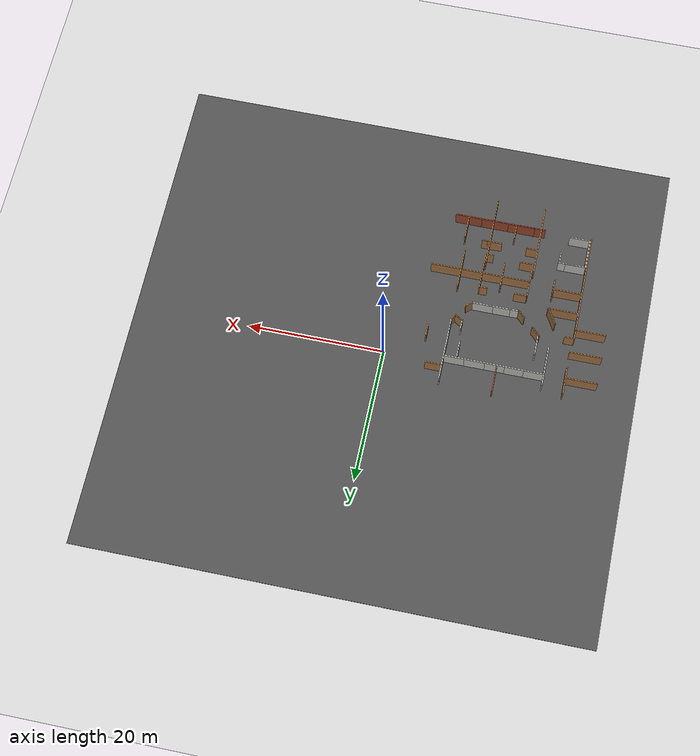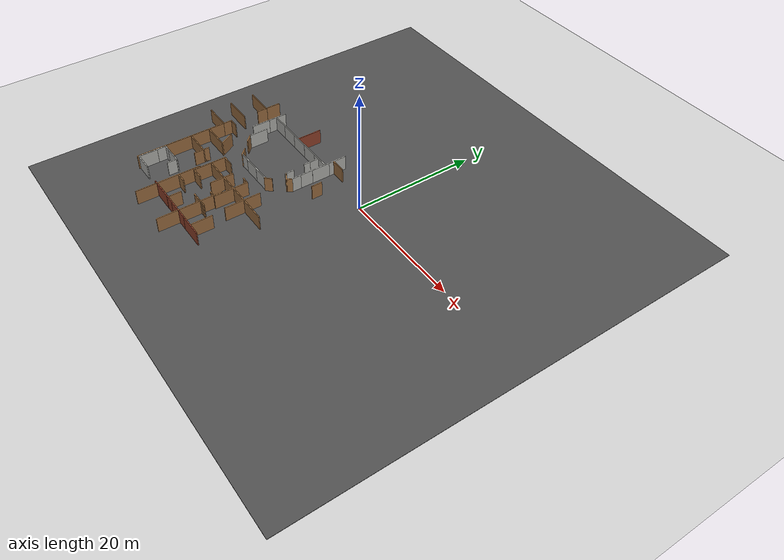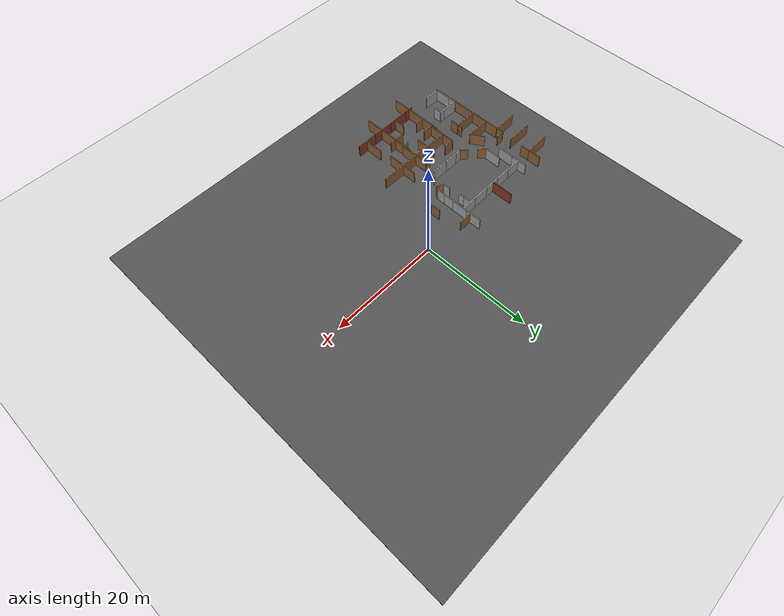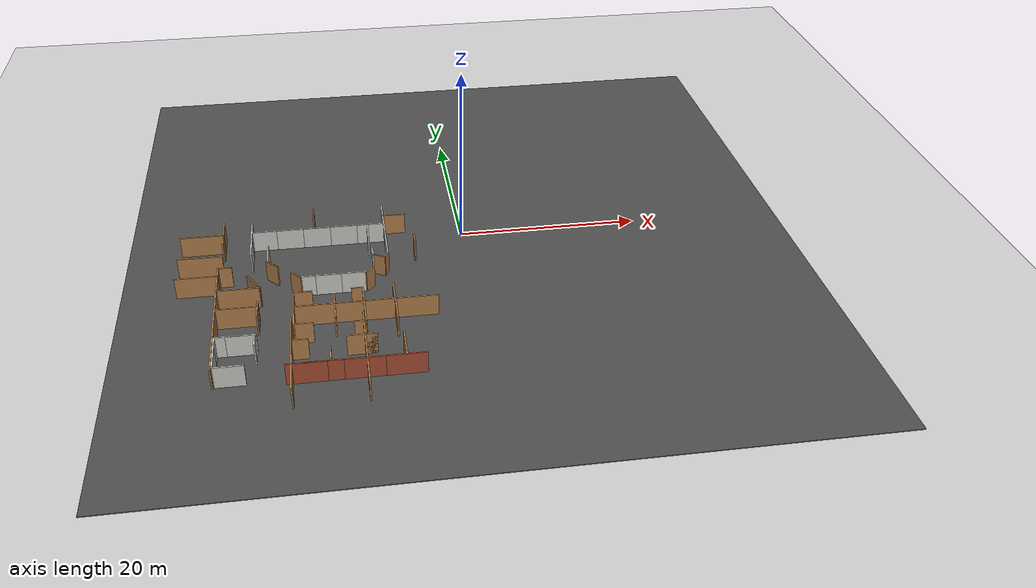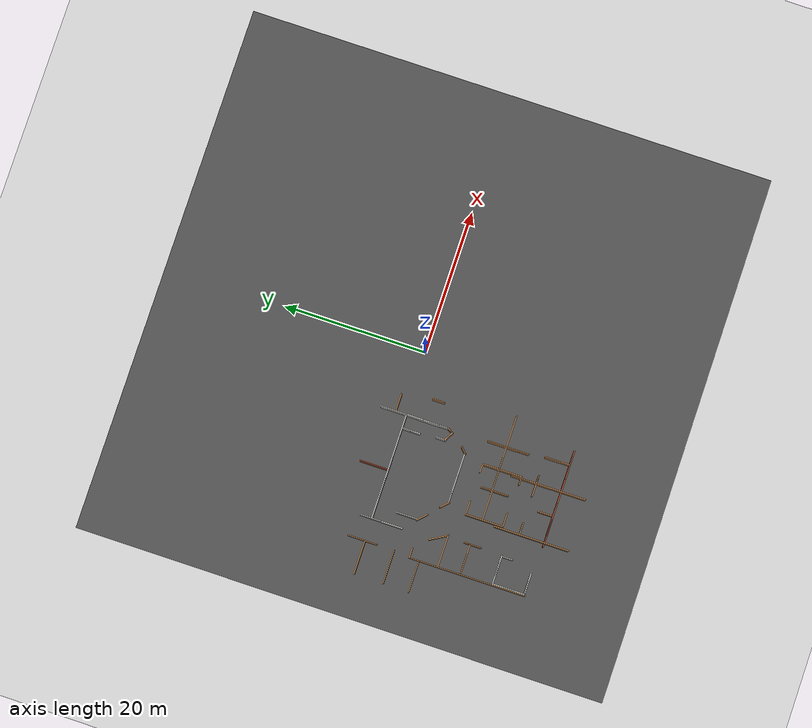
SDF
<sdf version="1.6">
 <world name="default">
  <model name="ground_plane">
   <static>1</static>
   <link name="link">
    <collision name="collision">
     <geometry><plane><normal>0 0 1</normal><size>100 100</size></plane></geometry>
     <surface><friction><ode><mu>100</mu><mu2>50</mu2></ode></friction></surface>
    </collision>
    <visual name="visual">
     <cast_shadows>0</cast_shadows>
     <geometry><plane><normal>0 0 1</normal><size>100 100</size></plane></geometry>
     <material>
      <script><uri>file://media/materials/scripts/gazebo.material</uri><name>Gazebo/Grey</name></script>
     </material>
    </visual>
   </link>
  </model>
  <model name="asphalt_plane">
   <static>1</static>
   <link name="link">
    <collision name="collision"><geometry><box><size>74 74 0.1</size></box></geometry></collision>
    <visual name="visual">
     <cast_shadows>0</cast_shadows>
     <geometry><box><size>74 74 0.1</size></box></geometry>
     <material>
      <script>
       <uri>model://asphalt_plane/materials/scripts</uri>
       <uri>model://asphalt_plane/materials/textures</uri>
       <name>vrc/asphalt</name>
      </script>
     </material>
    </visual>
   </link>
  </model>
  <model name="concrete_wall_3">
   <pose>-26.6192 -21.1644 0 0 -0 0</pose>
   <link name="Wall_0">
    <collision name="Wall_0_Collision">
     <geometry><box><size>3 0.15 2.5</size></box></geometry>
     <pose>0 0 1.25 0 -0 0</pose>
    </collision>
    <visual name="Wall_0_Visual">
     <pose>0 0 1.25 0 -0 0</pose>
     <geometry><box><size>3 0.15 2.5</size></box></geometry>
     <material>
      <script><uri>file://media/materials/scripts/gazebo.material</uri><name>Gazebo/CeilingTiled</name></script>
      <ambient>1 1 1 1</ambient>
     </material>
     <meta><layer>0</layer></meta>
    </visual>
    <pose>0 0 0 0 -0 1.5708</pose>
   </link>
   <static>1</static>
  </model>
  <model name="concrete_wall_4">
   <pose>-26.6244 -19.6415 0 0 -0 0</pose>
   <link name="Wall_0">
    <collision name="Wall_0_Collision">
     <geometry><box><size>3 0.15 2.5</size></box></geometry>
     <pose>0 0 1.25 0 -0 0</pose>
    </collision>
    <visual name="Wall_0_Visual">
     <pose>0 0 1.25 0 -0 0</pose>
     <geometry><box><size>3 0.15 2.5</size></box></geometry>
     <material>
      <script><uri>file://media/materials/scripts/gazebo.material</uri><name>Gazebo/CeilingTiled</name></script>
      <ambient>1 1 1 1</ambient>
     </material>
     <meta><layer>0</layer></meta>
    </visual>
    <pose>0 0 0 0 -0 1.5708</pose>
   </link>
   <static>1</static>
  </model>
  <model name="concrete_wall_6_clone">
   <pose>-25.1114 -22.6438 0 0 -0 1.57079</pose>
   <link name="Wall_0">
    <collision name="Wall_0_Collision">
     <geometry><box><size>3 0.15 2.5</size></box></geometry>
     <pose>0 0 1.25 0 -0 0</pose>
    </collision>
    <visual name="Wall_0_Visual">
     <pose>0 0 1.25 0 -0 0</pose>
     <geometry><box><size>3 0.15 2.5</size></box></geometry>
     <material>
      <script><uri>file://media/materials/scripts/gazebo.material</uri><name>Gazebo/CeilingTiled</name></script>
      <ambient>1 1 1 1</ambient>
     </material>
     <meta><layer>0</layer></meta>
    </visual>
    <pose>0 0 0 0 -0 1.5708</pose>
   </link>
   <static>1</static>
  </model>
  <model name="concrete_wall_6_clone_0">
   <pose>-25.1351 -18.2014 0 0 -0 1.57079</pose>
   <link name="Wall_0">
    <collision name="Wall_0_Collision">
     <geometry><box><size>3 0.15 2.5</size></box></geometry>
     <pose>0 0 1.25 0 -0 0</pose>
    </collision>
    <visual name="Wall_0_Visual">
     <pose>0 0 1.25 0 -0 0</pose>
     <geometry><box><size>3 0.15 2.5</size></box></geometry>
     <material>
      <script><uri>file://media/materials/scripts/gazebo.material</uri><name>Gazebo/CeilingTiled</name></script>
      <ambient>1 1 1 1</ambient>
     </material>
     <meta><layer>0</layer></meta>
    </visual>
    <pose>0 0 0 0 -0 1.5708</pose>
   </link>
   <static>1</static>
  </model>
  <model name="willowgarage_v1_1">
   <pose>-14.3408 -3.86286 0 0 -0 0</pose>
   <link name="Wall_152">
    <collision name="Wall_152_Collision">
     <geometry><box><size>2.5 0.15 2.5</size></box></geometry>
     <pose>0 0 1.25 0 -0 0</pose>
    </collision>
    <visual name="Wall_152_Visual">
     <pose>0 0 1.25 0 -0 0</pose>
     <geometry><box><size>2.5 0.15 2.5</size></box></geometry>
     <material>
      <script><uri>file://media/materials/scripts/gazebo.material</uri><name>Gazebo/Wood</name></script>
      <ambient>1 1 1 1</ambient>
     </material>
     <meta><layer>0</layer></meta>
    </visual>
    <pose>-12.1839 4.7175 0 0 0 -1.5708</pose>
   </link>
   <link name="Wall_153">
    <collision name="Wall_153_Collision">
     <geometry><box><size>4.75 0.15 2.5</size></box></geometry>
     <pose>0 0 1.25 0 -0 0</pose>
    </collision>
    <visual name="Wall_153_Visual">
     <pose>0 0 1.25 0 -0 0</pose>
     <geometry><box><size>4.75 0.15 2.5</size></box></geometry>
     <material>
      <script><uri>file://media/materials/scripts/gazebo.material</uri><name>Gazebo/Wood</name></script>
      <ambient>1 1 1 1</ambient>
     </material>
     <meta><layer>0</layer></meta>
    </visual>
    <pose>-14.4839 3.5425 0 0 -0 3.14159</pose>
   </link>
   <link name="Wall_155">
    <collision name="Wall_155_Collision">
     <geometry><box><size>1.75 0.15 2.5</size></box></geometry>
     <pose>0 0 1.25 0 -0 0</pose>
    </collision>
    <visual name="Wall_155_Visual">
     <pose>0 0 1.25 0 -0 0</pose>
     <geometry><box><size>1.75 0.15 2.5</size></box></geometry>
     <material>
      <script><uri>file://media/materials/scripts/gazebo.material</uri><name>Gazebo/Wood</name></script>
      <ambient>1 1 1 1</ambient>
     </material>
     <meta><layer>0</layer></meta>
    </visual>
    <pose>-12.1839 2.7425 0 0 0 -1.5708</pose>
   </link>
   <link name="Wall_157">
    <collision name="Wall_157_Collision">
     <geometry><box><size>4.75 0.15 2.5</size></box></geometry>
     <pose>0 0 1.25 0 -0 0</pose>
    </collision>
    <visual name="Wall_157_Visual">
     <pose>0 0 1.25 0 -0 0</pose>
     <geometry><box><size>4.75 0.15 2.5</size></box></geometry>
     <material>
      <script><uri>file://media/materials/scripts/gazebo.material</uri><name>Gazebo/Wood</name></script>
      <ambient>1 1 1 1</ambient>
     </material>
     <meta><layer>0</layer></meta>
    </visual>
    <pose>-14.4851 -0.527798 0 0 -0 0</pose>
   </link>
   <link name="Wall_159">
    <collision name="Wall_159_Collision">
     <geometry><box><size>1.5 0.15 2.5</size></box></geometry>
     <pose>0 0 1.25 0 -0 0</pose>
    </collision>
    <visual name="Wall_159_Visual">
     <pose>0 0 1.25 0 -0 0</pose>
     <geometry><box><size>1.5 0.15 2.5</size></box></geometry>
     <material>
      <script><uri>file://media/materials/scripts/gazebo.material</uri><name>Gazebo/Wood</name></script>
      <ambient>1 1 1 1</ambient>
     </material>
     <meta><layer>0</layer></meta>
    </visual>
    <pose>-12.4568 -3.428 0 0 -0 1.5708</pose>
   </link>
   <link name="Wall_161">
    <collision name="Wall_161_Collision">
     <geometry><box><size>1.5 0.15 2.5</size></box></geometry>
     <pose>0 0 1.25 0 -0 0</pose>
    </collision>
    <visual name="Wall_161_Visual">
     <pose>0 0 1.25 0 -0 0</pose>
     <geometry><box><size>1.5 0.15 2.5</size></box></geometry>
     <material>
      <script><uri>file://media/materials/scripts/gazebo.material</uri><name>Gazebo/Wood</name></script>
      <ambient>1 1 1 1</ambient>
     </material>
     <meta><layer>0</layer></meta>
    </visual>
    <pose>-11.7818 -2.753 0 0 -0 0</pose>
   </link>
   <link name="Wall_164">
    <collision name="Wall_164_Collision">
     <geometry><box><size>4.5 0.15 2.5</size></box></geometry>
     <pose>0 0 1.25 0 -0 0</pose>
    </collision>
    <visual name="Wall_164_Visual">
     <pose>0 0 1.25 0 -0 0</pose>
     <geometry><box><size>4.5 0.15 2.5</size></box></geometry>
     <material>
      <script><uri>file://media/materials/scripts/gazebo.material</uri><name>Gazebo/Wood</name></script>
      <ambient>1 1 1 1</ambient>
     </material>
     <meta><layer>0</layer></meta>
    </visual>
    <pose>-10.2229 -6.73409 0 0 -0 0</pose>
   </link>
   <link name="Wall_165">
    <collision name="Wall_165_Collision">
     <geometry><box><size>2.75 0.15 2.5</size></box></geometry>
     <pose>0 0 1.25 0 -0 0</pose>
    </collision>
    <visual name="Wall_165_Visual">
     <pose>0 0 1.25 0 -0 0</pose>
     <geometry><box><size>2.75 0.15 2.5</size></box></geometry>
     <material>
      <script><uri>file://media/materials/scripts/gazebo.material</uri><name>Gazebo/Wood</name></script>
      <ambient>1 1 1 1</ambient>
     </material>
     <meta><layer>0</layer></meta>
    </visual>
    <pose>-8.69791 -5.60825 0 0 -0 2.0944</pose>
   </link>
   <link name="Wall_167">
    <collision name="Wall_167_Collision">
     <geometry><box><size>4.25 0.15 2.5</size></box></geometry>
     <pose>0 0 1.25 0 -0 0</pose>
    </collision>
    <visual name="Wall_167_Visual">
     <pose>0 0 1.25 0 -0 0</pose>
     <geometry><box><size>4.25 0.15 2.5</size></box></geometry>
     <material>
      <script><uri>file://media/materials/scripts/gazebo.material</uri><name>Gazebo/Wood</name></script>
      <ambient>1 1 1 1</ambient>
     </material>
     <meta><layer>0</layer></meta>
    </visual>
    <pose>-10.2944 -9.89074 0 0 -0 0</pose>
   </link>
   <link name="Wall_168">
    <collision name="Wall_168_Collision">
     <geometry><box><size>1 0.15 2.5</size></box></geometry>
     <pose>0 0 1.25 0 -0 0</pose>
    </collision>
    <visual name="Wall_168_Visual">
     <pose>0 0 1.25 0 -0 0</pose>
     <geometry><box><size>1 0.15 2.5</size></box></geometry>
     <material>
      <script><uri>file://media/materials/scripts/gazebo.material</uri><name>Gazebo/Wood</name></script>
      <ambient>1 1 1 1</ambient>
     </material>
     <meta><layer>0</layer></meta>
    </visual>
    <pose>-8.24441 -9.46574 0 0 -0 1.5708</pose>
   </link>
   <link name="Wall_169">
    <collision name="Wall_169_Collision">
     <geometry><box><size>2.5 0.15 2.5</size></box></geometry>
     <pose>0 0 1.25 0 -0 0</pose>
    </collision>
    <visual name="Wall_169_Visual">
     <pose>0 0 1.25 0 -0 0</pose>
     <geometry><box><size>2.5 0.15 2.5</size></box></geometry>
     <material>
      <script><uri>file://media/materials/scripts/gazebo.material</uri><name>Gazebo/Wood</name></script>
      <ambient>1 1 1 1</ambient>
     </material>
     <meta><layer>0</layer></meta>
    </visual>
    <pose>-8.24441 -10.2157 0 0 0 -1.5708</pose>
   </link>
   <link name="Wall_240">
    <collision name="Wall_240_Collision">
     <geometry><box><size>14.75 0.15 2.5</size></box></geometry>
     <pose>0 0 1.25 0 -0 0</pose>
    </collision>
    <visual name="Wall_240_Visual">
     <pose>0 0 1.25 0 -0 0</pose>
     <geometry><box><size>14.75 0.15 2.5</size></box></geometry>
     <material>
      <script><uri>file://media/materials/scripts/gazebo.material</uri><name>Gazebo/Wood</name></script>
      <ambient>1 1 1 1</ambient>
     </material>
     <meta><layer>0</layer></meta>
    </visual>
    <pose>2.64575 -10.4128 0 0 -0 3.14159</pose>
   </link>
   <link name="Wall_241">
    <collision name="Wall_241_Collision">
     <geometry><box><size>3 0.15 2.5</size></box></geometry>
     <pose>0 0 1.25 0 -0 0</pose>
    </collision>
    <visual name="Wall_241_Visual">
     <pose>0 0 1.25 0 -0 0</pose>
     <geometry><box><size>3 0.15 2.5</size></box></geometry>
     <material>
      <script><uri>file://media/materials/scripts/gazebo.material</uri><name>Gazebo/Wood</name></script>
      <ambient>1 1 1 1</ambient>
     </material>
     <meta><layer>0</layer></meta>
    </visual>
    <pose>-4.65424 -11.8378 0 0 0 -1.5708</pose>
   </link>
   <link name="Wall_242">
    <collision name="Wall_242_Collision">
     <geometry><box><size>2 0.15 2.5</size></box></geometry>
     <pose>0 0 1.25 0 -0 0</pose>
    </collision>
    <visual name="Wall_242_Visual">
     <pose>0 0 1.25 0 -0 0</pose>
     <geometry><box><size>2 0.15 2.5</size></box></geometry>
     <material>
      <script><uri>file://media/materials/scripts/gazebo.material</uri><name>Gazebo/Wood</name></script>
      <ambient>1 1 1 1</ambient>
     </material>
     <meta><layer>0</layer></meta>
    </visual>
    <pose>-3.72924 -13.2628 0 0 -0 0</pose>
   </link>
   <link name="Wall_244">
    <collision name="Wall_244_Collision">
     <geometry><box><size>2.25 0.15 2.5</size></box></geometry>
     <pose>0 0 1.25 0 -0 0</pose>
    </collision>
    <visual name="Wall_244_Visual">
     <pose>0 0 1.25 0 -0 0</pose>
     <geometry><box><size>2.25 0.15 2.5</size></box></geometry>
     <material>
      <script><uri>file://media/materials/scripts/gazebo.material</uri><name>Gazebo/Wood</name></script>
      <ambient>1 1 1 1</ambient>
     </material>
     <meta><layer>0</layer></meta>
    </visual>
    <pose>-0.53809 -11.5666 0 0 0 -1.5708</pose>
   </link>
   <link name="Wall_252">
    <collision name="Wall_252_Collision">
     <geometry><box><size>3.25 0.15 2.5</size></box></geometry>
     <pose>0 0 1.25 0 -0 0</pose>
    </collision>
    <visual name="Wall_252_Visual">
     <pose>0 0 1.25 0 -0 0</pose>
     <geometry><box><size>3.25 0.15 2.5</size></box></geometry>
     <material>
      <script><uri>file://media/materials/scripts/gazebo.material</uri><name>Gazebo/Wood</name></script>
      <ambient>1 1 1 1</ambient>
     </material>
     <meta><layer>0</layer></meta>
    </visual>
    <pose>5.59669 -11.9573 0 0 0 -1.5708</pose>
   </link>
   <link name="Wall_254">
    <collision name="Wall_254_Collision">
     <geometry><box><size>3.25 0.15 2.5</size></box></geometry>
     <pose>0 0 1.25 0 -0 0</pose>
    </collision>
    <visual name="Wall_254_Visual">
     <pose>0 0 1.25 0 -0 0</pose>
     <geometry><box><size>3.25 0.15 2.5</size></box></geometry>
     <material>
      <script><uri>file://media/materials/scripts/gazebo.material</uri><name>Gazebo/Wood</name></script>
      <ambient>1 1 1 1</ambient>
     </material>
     <meta><layer>0</layer></meta>
    </visual>
    <pose>2.44005 -12.0108 0 0 0 -1.5708</pose>
   </link>
   <link name="Wall_255">
    <collision name="Wall_255_Collision">
     <geometry><box><size>1.25 0.15 2.5</size></box></geometry>
     <pose>0 0 1.25 0 -0 0</pose>
    </collision>
    <visual name="Wall_255_Visual">
     <pose>0 0 1.25 0 -0 0</pose>
     <geometry><box><size>1.25 0.15 2.5</size></box></geometry>
     <material>
      <script><uri>file://media/materials/scripts/gazebo.material</uri><name>Gazebo/Wood</name></script>
      <ambient>1 1 1 1</ambient>
     </material>
     <meta><layer>0</layer></meta>
    </visual>
    <pose>1.89004 -13.5608 0 0 -0 3.14159</pose>
   </link>
   <link name="Wall_257">
    <collision name="Wall_257_Collision">
     <geometry><box><size>2.75 0.15 2.5</size></box></geometry>
     <pose>0 0 1.25 0 -0 0</pose>
    </collision>
    <visual name="Wall_257_Visual">
     <pose>0 0 1.25 0 -0 0</pose>
     <geometry><box><size>2.75 0.15 2.5</size></box></geometry>
     <material>
      <script><uri>file://media/materials/scripts/gazebo.material</uri><name>Gazebo/Wood</name></script>
      <ambient>1 1 1 1</ambient>
     </material>
     <meta><layer>0</layer></meta>
    </visual>
    <pose>5.59669 -9.10726 0 0 -0 1.5708</pose>
   </link>
   <link name="Wall_259">
    <collision name="Wall_259_Collision">
     <geometry><box><size>2.5 0.15 2.5</size></box></geometry>
     <pose>0 0 1.25 0 -0 0</pose>
    </collision>
    <visual name="Wall_259_Visual">
     <pose>0 0 1.25 0 -0 0</pose>
     <geometry><box><size>2.5 0.15 2.5</size></box></geometry>
     <material>
      <script><uri>file://media/materials/scripts/gazebo.material</uri><name>Gazebo/Wood</name></script>
      <ambient>1 1 1 1</ambient>
     </material>
     <meta><layer>0</layer></meta>
    </visual>
    <pose>-4.65424 -9.23778 0 0 -0 1.5708</pose>
   </link>
   <link name="Wall_260">
    <collision name="Wall_260_Collision">
     <geometry><box><size>2 0.15 2.5</size></box></geometry>
     <pose>0 0 1.25 0 -0 0</pose>
    </collision>
    <visual name="Wall_260_Visual">
     <pose>0 0 1.25 0 -0 0</pose>
     <geometry><box><size>2 0.15 2.5</size></box></geometry>
     <material>
      <script><uri>file://media/materials/scripts/gazebo.material</uri><name>Gazebo/Wood</name></script>
      <ambient>1 1 1 1</ambient>
     </material>
     <meta><layer>0</layer></meta>
    </visual>
    <pose>-3.72924 -8.06278 0 0 -0 0</pose>
   </link>
   <link name="Wall_262">
    <collision name="Wall_262_Collision">
     <geometry><box><size>1.75 0.15 2.5</size></box></geometry>
     <pose>0 0 1.25 0 -0 0</pose>
    </collision>
    <visual name="Wall_262_Visual">
     <pose>0 0 1.25 0 -0 0</pose>
     <geometry><box><size>1.75 0.15 2.5</size></box></geometry>
     <material>
      <script><uri>file://media/materials/scripts/gazebo.material</uri><name>Gazebo/Wood</name></script>
      <ambient>1 1 1 1</ambient>
     </material>
     <meta><layer>0</layer></meta>
    </visual>
    <pose>-0.53809 -9.71664 0 0 -0 1.5708</pose>
   </link>
   <link name="Wall_264">
    <collision name="Wall_264_Collision">
     <geometry><box><size>2.5 0.15 2.5</size></box></geometry>
     <pose>0 0 1.25 0 -0 0</pose>
    </collision>
    <visual name="Wall_264_Visual">
     <pose>0 0 1.25 0 -0 0</pose>
     <geometry><box><size>2.5 0.15 2.5</size></box></geometry>
     <material>
      <script><uri>file://media/materials/scripts/gazebo.material</uri><name>Gazebo/Wood</name></script>
      <ambient>1 1 1 1</ambient>
     </material>
     <meta><layer>0</layer></meta>
    </visual>
    <pose>2.44005 -9.28576 0 0 -0 1.5708</pose>
   </link>
   <link name="Wall_265">
    <collision name="Wall_265_Collision">
     <geometry><box><size>1.25 0.15 2.5</size></box></geometry>
     <pose>0 0 1.25 0 -0 0</pose>
    </collision>
    <visual name="Wall_265_Visual">
     <pose>0 0 1.25 0 -0 0</pose>
     <geometry><box><size>1.25 0.15 2.5</size></box></geometry>
     <material>
      <script><uri>file://media/materials/scripts/gazebo.material</uri><name>Gazebo/Wood</name></script>
      <ambient>1 1 1 1</ambient>
     </material>
     <meta><layer>0</layer></meta>
    </visual>
    <pose>1.89004 -8.11076 0 0 -0 3.14159</pose>
   </link>
   <link name="Wall_284">
    <collision name="Wall_284_Collision">
     <geometry><box><size>1 0.15 2.5</size></box></geometry>
     <pose>0 0 1.25 0 -0 0</pose>
    </collision>
    <visual name="Wall_284_Visual">
     <pose>0 0 1.25 0 -0 0</pose>
     <geometry><box><size>1 0.15 2.5</size></box></geometry>
     <material>
      <script><uri>file://media/materials/scripts/gazebo.material</uri><name>Gazebo/Wood</name></script>
      <ambient>1 1 1 1</ambient>
     </material>
     <meta><layer>0</layer></meta>
    </visual>
    <pose>5.29209 -2.61627 0 0 0 -2.0944</pose>
   </link>
   <link name="Wall_285">
    <collision name="Wall_285_Collision">
     <geometry><box><size>1.5 0.15 2.5</size></box></geometry>
     <pose>0 0 1.25 0 -0 0</pose>
    </collision>
    <visual name="Wall_285_Visual">
     <pose>0 0 1.25 0 -0 0</pose>
     <geometry><box><size>1.5 0.15 2.5</size></box></geometry>
     <material>
      <script><uri>file://media/materials/scripts/gazebo.material</uri><name>Gazebo/Wood</name></script>
      <ambient>1 1 1 1</ambient>
     </material>
     <meta><layer>0</layer></meta>
    </visual>
    <pose>4.49502 -2.64683 0 0 -0 2.61799</pose>
   </link>
   <link name="Wall_299">
    <collision name="Wall_299_Collision">
     <geometry><box><size>1.75 0.15 2.5</size></box></geometry>
     <pose>0 0 1.25 0 -0 0</pose>
    </collision>
    <visual name="Wall_299_Visual">
     <pose>0 0 1.25 0 -0 0</pose>
     <geometry><box><size>1.75 0.15 2.5</size></box></geometry>
     <material>
      <script><uri>file://media/materials/scripts/gazebo.material</uri><name>Gazebo/Wood</name></script>
      <ambient>1 1 1 1</ambient>
     </material>
     <meta><layer>0</layer></meta>
    </visual>
    <pose>-6.83059 -2.67941 0 0 0 -0.785398</pose>
   </link>
   <link name="Wall_302">
    <collision name="Wall_302_Collision">
     <geometry><box><size>1.5 0.15 2.5</size></box></geometry>
     <pose>0 0 1.25 0 -0 0</pose>
    </collision>
    <visual name="Wall_302_Visual">
     <pose>0 0 1.25 0 -0 0</pose>
     <geometry><box><size>1.5 0.15 2.5</size></box></geometry>
     <material>
      <script><uri>file://media/materials/scripts/gazebo.material</uri><name>Gazebo/Wood</name></script>
      <ambient>1 1 1 1</ambient>
     </material>
     <meta><layer>0</layer></meta>
    </visual>
    <pose>-4.32982 -5.00708 0 0 0 -0.785398</pose>
   </link>
   <link name="Wall_304">
    <collision name="Wall_304_Collision">
     <geometry><box><size>1.25 0.15 2.5</size></box></geometry>
     <pose>0 0 1.25 0 -0 0</pose>
    </collision>
    <visual name="Wall_304_Visual">
     <pose>0 0 1.25 0 -0 0</pose>
     <geometry><box><size>1.25 0.15 2.5</size></box></geometry>
     <material>
      <script><uri>file://media/materials/scripts/gazebo.material</uri><name>Gazebo/Wood</name></script>
      <ambient>1 1 1 1</ambient>
     </material>
     <meta><layer>0</layer></meta>
    </visual>
    <pose>3.38639 -5.09547 0 0 -0 0.785398</pose>
   </link>
   <link name="Wall_324">
    <collision name="Wall_324_Collision">
     <geometry><box><size>1.75 0.15 2.5</size></box></geometry>
     <pose>0 0 1.25 0 -0 0</pose>
    </collision>
    <visual name="Wall_324_Visual">
     <pose>0 0 1.25 0 -0 0</pose>
     <geometry><box><size>1.75 0.15 2.5</size></box></geometry>
     <material>
      <script><uri>file://media/materials/scripts/gazebo.material</uri><name>Gazebo/Wood</name></script>
      <ambient>1 1 1 1</ambient>
     </material>
     <meta><layer>0</layer></meta>
    </visual>
    <pose>8.62279 0.119011 0 0 0 -1.5708</pose>
   </link>
   <link name="Wall_326">
    <collision name="Wall_326_Collision">
     <geometry><box><size>2.5 0.15 2.5</size></box></geometry>
     <pose>0 0 1.25 0 -0 0</pose>
    </collision>
    <visual name="Wall_326_Visual">
     <pose>0 0 1.25 0 -0 0</pose>
     <geometry><box><size>2.5 0.15 2.5</size></box></geometry>
     <material>
      <script><uri>file://media/materials/scripts/gazebo.material</uri><name>Gazebo/Wood</name></script>
      <ambient>1 1 1 1</ambient>
     </material>
     <meta><layer>0</layer></meta>
    </visual>
    <pose>6.71011 5.1345 0 0 -0 0</pose>
   </link>
   <link name="Wall_55">
    <collision name="Wall_55_Collision">
     <geometry><box><size>3.5 0.15 2.5</size></box></geometry>
     <pose>0 0 1.25 0 -0 0</pose>
    </collision>
    <visual name="Wall_55_Visual">
     <pose>0 0 1.25 0 -0 0</pose>
     <geometry><box><size>3.5 0.15 2.5</size></box></geometry>
     <material>
      <script><uri>file://media/materials/scripts/gazebo.material</uri><name>Gazebo/Wood</name></script>
      <ambient>1 1 1 1</ambient>
     </material>
     <meta><layer>0</layer></meta>
    </visual>
    <pose>5.96875 -17.4404 0 0 -0 1.5708</pose>
   </link>
   <link name="Wall_57">
    <collision name="Wall_57_Collision">
     <geometry><box><size>10.5 0.15 2.5</size></box></geometry>
     <pose>0 0 1.25 0 -0 0</pose>
    </collision>
    <visual name="Wall_57_Visual">
     <pose>0 0 1.25 0 -0 0</pose>
     <geometry><box><size>10.5 0.15 2.5</size></box></geometry>
     <material>
      <script><uri>file://media/materials/scripts/gazebo.material</uri><name>Gazebo/Wood</name></script>
      <ambient>1 1 1 1</ambient>
     </material>
     <meta><layer>0</layer></meta>
    </visual>
    <pose>2.21555 -17.3789 0 0 -0 1.5708</pose>
   </link>
   <link name="Wall_58">
    <collision name="Wall_58_Collision">
     <geometry><box><size>1.25 0.15 2.5</size></box></geometry>
     <pose>0 0 1.25 0 -0 0</pose>
    </collision>
    <visual name="Wall_58_Visual">
     <pose>0 0 1.25 0 -0 0</pose>
     <geometry><box><size>1.25 0.15 2.5</size></box></geometry>
     <material>
      <script><uri>file://media/materials/scripts/gazebo.material</uri><name>Gazebo/Wood</name></script>
      <ambient>1 1 1 1</ambient>
     </material>
     <meta><layer>0</layer></meta>
    </visual>
    <pose>2.76555 -15.7039 0 0 -0 0</pose>
   </link>
   <link name="Wall_59">
    <collision name="Wall_59_Collision">
     <geometry><box><size>3 0.15 2.5</size></box></geometry>
     <pose>0 0 1.25 0 -0 0</pose>
    </collision>
    <visual name="Wall_59_Visual">
     <pose>0 0 1.25 0 -0 0</pose>
     <geometry><box><size>3 0.15 2.5</size></box></geometry>
     <material>
      <script><uri>file://media/materials/scripts/gazebo.material</uri><name>Gazebo/Wood</name></script>
      <ambient>1 1 1 1</ambient>
     </material>
     <meta><layer>0</layer></meta>
    </visual>
    <pose>1.89055 -15.7039 0 0 -0 3.14159</pose>
   </link>
   <link name="Wall_61">
    <collision name="Wall_61_Collision">
     <geometry><box><size>10.5 0.15 2.5</size></box></geometry>
     <pose>0 0 1.25 0 -0 0</pose>
    </collision>
    <visual name="Wall_61_Visual">
     <pose>0 0 1.25 0 -0 0</pose>
     <geometry><box><size>10.5 0.15 2.5</size></box></geometry>
     <material>
      <script><uri>file://media/materials/scripts/gazebo.material</uri><name>Gazebo/Wood</name></script>
      <ambient>1 1 1 1</ambient>
     </material>
     <meta><layer>0</layer></meta>
    </visual>
    <pose>-4.95338 -17.3764 0 0 -0 1.5708</pose>
   </link>
   <link name="Wall_62">
    <collision name="Wall_62_Collision">
     <geometry><box><size>1.75 0.15 2.5</size></box></geometry>
     <pose>0 0 1.25 0 -0 0</pose>
    </collision>
    <visual name="Wall_62_Visual">
     <pose>0 0 1.25 0 -0 0</pose>
     <geometry><box><size>1.75 0.15 2.5</size></box></geometry>
     <material>
      <script><uri>file://media/materials/scripts/gazebo.material</uri><name>Gazebo/Wood</name></script>
      <ambient>1 1 1 1</ambient>
     </material>
     <meta><layer>0</layer></meta>
    </visual>
    <pose>-4.15338 -15.7014 0 0 -0 0</pose>
   </link>
   <link name="Wall_64">
    <collision name="Wall_64_Collision">
     <geometry><box><size>2 0.15 2.5</size></box></geometry>
     <pose>0 0 1.25 0 -0 0</pose>
    </collision>
    <visual name="Wall_64_Visual">
     <pose>0 0 1.25 0 -0 0</pose>
     <geometry><box><size>2 0.15 2.5</size></box></geometry>
     <material>
      <script><uri>file://media/materials/scripts/gazebo.material</uri><name>Gazebo/Wood</name></script>
      <ambient>1 1 1 1</ambient>
     </material>
     <meta><layer>0</layer></meta>
    </visual>
    <pose>-1.23001 -18.0674 0 0 -0 1.5708</pose>
   </link>
   <link name="Wall_8">
    <collision name="Wall_8_Collision">
     <geometry><box><size>15 0.15 2.5</size></box></geometry>
     <pose>0 0 1.25 0 -0 0</pose>
    </collision>
    <visual name="Wall_8_Visual">
     <pose>0 0 1.25 0 -0 0</pose>
     <geometry><box><size>15 0.15 2.5</size></box></geometry>
     <material>
      <script><uri>file://media/materials/scripts/gazebo.material</uri><name>Gazebo/Wood</name></script>
      <ambient>1 1 1 1</ambient>
     </material>
     <meta><layer>0</layer></meta>
    </visual>
    <pose>-12.4568 -11.528 0 0 -0 1.5708</pose>
   </link>
   <link name="Wall_9">
    <collision name="Wall_9_Collision">
     <geometry><box><size>4.5 0.15 2.5</size></box></geometry>
     <pose>0 0 1.25 0 -0 0</pose>
    </collision>
    <visual name="Wall_9_Visual">
     <pose>0 0 1.25 0 -0 0</pose>
     <geometry><box><size>4.5 0.15 2.5</size></box></geometry>
     <material>
      <script><uri>file://media/materials/scripts/gazebo.material</uri><name>Gazebo/Wood</name></script>
      <ambient>1 1 1 1</ambient>
     </material>
     <meta><layer>0</layer></meta>
    </visual>
    <pose>-14.6318 -4.103 0 0 -0 3.14159</pose>
   </link>
   <static>1</static>
  </model>
  <model name="concrete_wall_6_clone_1_clone">
   <pose>-24.0801 -18.2049 0 0 -0 1.57079</pose>
   <link name="Wall_0">
    <collision name="Wall_0_Collision">
     <geometry><box><size>3 0.15 2.5</size></box></geometry>
     <pose>0 0 1.25 0 -0 0</pose>
    </collision>
    <visual name="Wall_0_Visual">
     <pose>0 0 1.25 0 -0 0</pose>
     <geometry><box><size>3 0.15 2.5</size></box></geometry>
     <material>
      <script><uri>file://media/materials/scripts/gazebo.material</uri><name>Gazebo/CeilingTiled</name></script>
      <ambient>1 1 1 1</ambient>
     </material>
     <meta><layer>0</layer></meta>
    </visual>
    <pose>0 0 0 0 -0 1.5708</pose>
   </link>
   <static>1</static>
  </model>
  <model name="concrete_wall_6_clone_8_clone_1">
   <pose>-22.771 -19.0353 0 0 -0 0</pose>
   <link name="Wall_0">
    <collision name="Wall_0_Collision">
     <geometry><box><size>1.5 0.15 2.5</size></box></geometry>
     <pose>0 0 1.25 0 -0 0</pose>
    </collision>
    <visual name="Wall_0_Visual">
     <pose>0 0 1.25 0 -0 0</pose>
     <geometry><box><size>1.5 0.15 2.5</size></box></geometry>
     <material>
      <script><uri>file://media/materials/scripts/gazebo.material</uri><name>Gazebo/CeilingTiled</name></script>
      <ambient>1 1 1 1</ambient>
     </material>
     <meta><layer>0</layer></meta>
    </visual>
    <pose>0 0 0 0 -0 1.5708</pose>
   </link>
   <static>1</static>
  </model>
  <model name="brick_wall_1_clone_5">
   <pose>-8.38998 -23.052 0 0 -0 0</pose>
   <link name="Wall_0">
    <collision name="Wall_0_Collision">
     <geometry><box><size>4 0.15 2.5</size></box></geometry>
     <pose>0 0 1.25 0 -0 0</pose>
    </collision>
    <visual name="Wall_0_Visual">
     <pose>0 0 1.25 0 -0 0</pose>
     <geometry><box><size>4 0.15 2.5</size></box></geometry>
     <material>
      <script><uri>file://media/materials/scripts/gazebo.material</uri><name>Gazebo/Bricks</name></script>
      <ambient>1 1 1 1</ambient>
     </material>
     <meta><layer>0</layer></meta>
    </visual>
   </link>
   <static>1</static>
  </model>
  <model name="brick_wall_1_clone_6">
   <pose>-12.3494 -23.0462 0 0 -0 0</pose>
   <link name="Wall_0">
    <collision name="Wall_0_Collision">
     <geometry><box><size>4 0.15 2.5</size></box></geometry>
     <pose>0 0 1.25 0 -0 0</pose>
    </collision>
    <visual name="Wall_0_Visual">
     <pose>0 0 1.25 0 -0 0</pose>
     <geometry><box><size>4 0.15 2.5</size></box></geometry>
     <material>
      <script><uri>file://media/materials/scripts/gazebo.material</uri><name>Gazebo/Bricks</name></script>
      <ambient>1 1 1 1</ambient>
     </material>
     <meta><layer>0</layer></meta>
    </visual>
   </link>
   <static>1</static>
  </model>
  <model name="brick_wall_1_clone_7">
   <pose>-16.3083 -23.0312 0 0 -0 0</pose>
   <link name="Wall_0">
    <collision name="Wall_0_Collision">
     <geometry><box><size>4 0.15 2.5</size></box></geometry>
     <pose>0 0 1.25 0 -0 0</pose>
    </collision>
    <visual name="Wall_0_Visual">
     <pose>0 0 1.25 0 -0 0</pose>
     <geometry><box><size>4 0.15 2.5</size></box></geometry>
     <material>
      <script><uri>file://media/materials/scripts/gazebo.material</uri><name>Gazebo/Bricks</name></script>
      <ambient>1 1 1 1</ambient>
     </material>
     <meta><layer>0</layer></meta>
    </visual>
   </link>
   <static>1</static>
  </model>
  <model name="brick_wall_1_clone_8">
   <pose>-17.8942 -23.0561 0 0 -0 0</pose>
   <link name="Wall_0">
    <collision name="Wall_0_Collision">
     <geometry><box><size>4 0.15 2.5</size></box></geometry>
     <pose>0 0 1.25 0 -0 0</pose>
    </collision>
    <visual name="Wall_0_Visual">
     <pose>0 0 1.25 0 -0 0</pose>
     <geometry><box><size>4 0.15 2.5</size></box></geometry>
     <material>
      <script><uri>file://media/materials/scripts/gazebo.material</uri><name>Gazebo/Bricks</name></script>
      <ambient>1 1 1 1</ambient>
     </material>
     <meta><layer>0</layer></meta>
    </visual>
   </link>
   <static>1</static>
  </model>
  <model name="concrete_wall_13_clone_2">
   <pose>-23.4226 -3.05539 0 0 -0 0</pose>
   <link name="Wall_0">
    <collision name="Wall_0_Collision">
     <geometry><box><size>3 0.15 2.5</size></box></geometry>
     <pose>0 0 1.25 0 -0 0</pose>
    </collision>
    <visual name="Wall_0_Visual">
     <pose>0 0 1.25 0 -0 0</pose>
     <geometry><box><size>3 0.15 2.5</size></box></geometry>
     <material>
      <script><uri>file://media/materials/scripts/gazebo.material</uri><name>Gazebo/CeilingTiled</name></script>
      <ambient>1 1 1 1</ambient>
     </material>
     <meta><layer>0</layer></meta>
    </visual>
    <pose>0 0 0 0 -0 1.5708</pose>
   </link>
   <static>1</static>
  </model>
  <model name="concrete_wall_13_clone_3">
   <pose>-23.4134 -0.077736 0 0 -0 0</pose>
   <link name="Wall_0">
    <collision name="Wall_0_Collision">
     <geometry><box><size>3 0.15 2.5</size></box></geometry>
     <pose>0 0 1.25 0 -0 0</pose>
    </collision>
    <visual name="Wall_0_Visual">
     <pose>0 0 1.25 0 -0 0</pose>
     <geometry><box><size>3 0.15 2.5</size></box></geometry>
     <material>
      <script><uri>file://media/materials/scripts/gazebo.material</uri><name>Gazebo/CeilingTiled</name></script>
      <ambient>1 1 1 1</ambient>
     </material>
     <meta><layer>0</layer></meta>
    </visual>
    <pose>0 0 0 0 -0 1.5708</pose>
   </link>
   <static>1</static>
  </model>
  <model name="concrete_wall_13_clone_4">
   <pose>-8.82557 1.90073 0 0 -0 0</pose>
   <link name="Wall_0">
    <collision name="Wall_0_Collision">
     <geometry><box><size>3 0.15 2.5</size></box></geometry>
     <pose>0 0 1.25 0 -0 0</pose>
    </collision>
    <visual name="Wall_0_Visual">
     <pose>0 0 1.25 0 -0 0</pose>
     <geometry><box><size>3 0.15 2.5</size></box></geometry>
     <material>
      <script><uri>file://media/materials/scripts/gazebo.material</uri><name>Gazebo/CeilingTiled</name></script>
      <ambient>1 1 1 1</ambient>
     </material>
     <meta><layer>0</layer></meta>
    </visual>
    <pose>0 0 0 0 -0 1.5708</pose>
   </link>
   <static>1</static>
  </model>
  <model name="concrete_wall_13_clone_5">
   <pose>-8.82582 -1.07752 0 0 -0 0</pose>
   <link name="Wall_0">
    <collision name="Wall_0_Collision">
     <geometry><box><size>3 0.15 2.5</size></box></geometry>
     <pose>0 0 1.25 0 -0 0</pose>
    </collision>
    <visual name="Wall_0_Visual">
     <pose>0 0 1.25 0 -0 0</pose>
     <geometry><box><size>3 0.15 2.5</size></box></geometry>
     <material>
      <script><uri>file://media/materials/scripts/gazebo.material</uri><name>Gazebo/CeilingTiled</name></script>
      <ambient>1 1 1 1</ambient>
     </material>
     <meta><layer>0</layer></meta>
    </visual>
    <pose>0 0 0 0 -0 1.5708</pose>
   </link>
   <static>1</static>
  </model>
  <model name="concrete_wall_13_clone_6">
   <pose>-8.84347 -3.43261 0 0 -0 0</pose>
   <link name="Wall_0">
    <collision name="Wall_0_Collision">
     <geometry><box><size>3 0.15 2.5</size></box></geometry>
     <pose>0 0 1.25 0 -0 0</pose>
    </collision>
    <visual name="Wall_0_Visual">
     <pose>0 0 1.25 0 -0 0</pose>
     <geometry><box><size>3 0.15 2.5</size></box></geometry>
     <material>
      <script><uri>file://media/materials/scripts/gazebo.material</uri><name>Gazebo/CeilingTiled</name></script>
      <ambient>1 1 1 1</ambient>
     </material>
     <meta><layer>0</layer></meta>
    </visual>
    <pose>0 0 0 0 -0 1.5708</pose>
   </link>
   <static>1</static>
  </model>
  <model name="concrete_wall_6_clone_8_clone_2_clone_2_clone_clone_clone_0">
   <pose>-8.83713 -5.35122 0 0 -0 0</pose>
   <link name="Wall_0">
    <collision name="Wall_0_Collision">
     <geometry><box><size>1.5 0.15 2.5</size></box></geometry>
     <pose>0 0 1.25 0 -0 0</pose>
    </collision>
    <visual name="Wall_0_Visual">
     <pose>0 0 1.25 0 -0 0</pose>
     <geometry><box><size>1.5 0.15 2.5</size></box></geometry>
     <material>
      <script><uri>file://media/materials/scripts/gazebo.material</uri><name>Gazebo/CeilingTiled</name></script>
      <ambient>1 1 1 1</ambient>
     </material>
     <meta><layer>0</layer></meta>
    </visual>
    <pose>0 0 0 0 -0 1.5708</pose>
   </link>
   <static>1</static>
  </model>
  <model name="concrete_wall_13_clone_2_clone">
   <pose>-21.6098 -4.55832 0 0 -0 0</pose>
   <link name="Wall_0">
    <collision name="Wall_0_Collision">
     <geometry><box><size>3 0.15 2.5</size></box></geometry>
     <pose>0 0 1.25 0 -0 0</pose>
    </collision>
    <visual name="Wall_0_Visual">
     <pose>0 0 1.25 0 -0 0</pose>
     <geometry><box><size>3 0.15 2.5</size></box></geometry>
     <material>
      <script><uri>file://media/materials/scripts/gazebo.material</uri><name>Gazebo/CeilingTiled</name></script>
      <ambient>1 1 1 1</ambient>
     </material>
     <meta><layer>0</layer></meta>
    </visual>
    <pose>0 0 0 0 -0 1.5708</pose>
   </link>
   <static>1</static>
  </model>
  <model name="concrete_wall_6_clone_8_clone_2_clone_2_clone_clone_clone_0_clone">
   <pose>-10.7007 -1.06116 0 0 -0 0</pose>
   <link name="Wall_0">
    <collision name="Wall_0_Collision">
     <geometry><box><size>1.5 0.15 2.5</size></box></geometry>
     <pose>0 0 1.25 0 -0 0</pose>
    </collision>
    <visual name="Wall_0_Visual">
     <pose>0 0 1.25 0 -0 0</pose>
     <geometry><box><size>1.5 0.15 2.5</size></box></geometry>
     <material>
      <script><uri>file://media/materials/scripts/gazebo.material</uri><name>Gazebo/CeilingTiled</name></script>
      <ambient>1 1 1 1</ambient>
     </material>
     <meta><layer>0</layer></meta>
    </visual>
    <pose>0 0 0 0 -0 1.5708</pose>
   </link>
   <static>1</static>
  </model>
  <model name="concrete_wall_6_clone_8_clone_2_clone_2_clone_clone_clone_0_clone_0">
   <pose>-10.7106 -2.11344 0 0 -0 0</pose>
   <link name="Wall_0">
    <collision name="Wall_0_Collision">
     <geometry><box><size>1.5 0.15 2.5</size></box></geometry>
     <pose>0 0 1.25 0 -0 0</pose>
    </collision>
    <visual name="Wall_0_Visual">
     <pose>0 0 1.25 0 -0 0</pose>
     <geometry><box><size>1.5 0.15 2.5</size></box></geometry>
     <material>
      <script><uri>file://media/materials/scripts/gazebo.material</uri><name>Gazebo/CeilingTiled</name></script>
      <ambient>1 1 1 1</ambient>
     </material>
     <meta><layer>0</layer></meta>
    </visual>
    <pose>0 0 0 0 -0 1.5708</pose>
   </link>
   <static>1</static>
  </model>
  <model name="concrete_wall_6_clone_8_clone_2_clone_2_clone_clone_clone_0_clone_1">
   <pose>-10.4362 -5.61608 0 0 -0 0</pose>
   <link name="Wall_0">
    <collision name="Wall_0_Collision">
     <geometry><box><size>1.5 0.15 2.5</size></box></geometry>
     <pose>0 0 1.25 0 -0 0</pose>
    </collision>
    <visual name="Wall_0_Visual">
     <pose>0 0 1.25 0 -0 0</pose>
     <geometry><box><size>1.5 0.15 2.5</size></box></geometry>
     <material>
      <script><uri>file://media/materials/scripts/gazebo.material</uri><name>Gazebo/CeilingTiled</name></script>
      <ambient>1 1 1 1</ambient>
     </material>
     <meta><layer>0</layer></meta>
    </visual>
    <pose>0 0 0 0 -0 1.5708</pose>
   </link>
   <static>1</static>
  </model>
  <model name="concrete_wall_6_clone_6_clone">
   <pose>-12.9232 -9.2675 0 0 -0 1.57079</pose>
   <link name="Wall_0">
    <collision name="Wall_0_Collision">
     <geometry><box><size>3 0.15 2.5</size></box></geometry>
     <pose>0 0 1.25 0 -0 0</pose>
    </collision>
    <visual name="Wall_0_Visual">
     <pose>0 0 1.25 0 -0 0</pose>
     <geometry><box><size>3 0.15 2.5</size></box></geometry>
     <material>
      <script><uri>file://media/materials/scripts/gazebo.material</uri><name>Gazebo/CeilingTiled</name></script>
      <ambient>1 1 1 1</ambient>
     </material>
     <meta><layer>0</layer></meta>
    </visual>
    <pose>0 0 0 0 -0 1.5708</pose>
   </link>
   <static>1</static>
  </model>
  <model name="concrete_wall_6_clone_6_clone_0">
   <pose>-15.4705 -9.27264 0 0 -0 1.57079</pose>
   <link name="Wall_0">
    <collision name="Wall_0_Collision">
     <geometry><box><size>3 0.15 2.5</size></box></geometry>
     <pose>0 0 1.25 0 -0 0</pose>
    </collision>
    <visual name="Wall_0_Visual">
     <pose>0 0 1.25 0 -0 0</pose>
     <geometry><box><size>3 0.15 2.5</size></box></geometry>
     <material>
      <script><uri>file://media/materials/scripts/gazebo.material</uri><name>Gazebo/CeilingTiled</name></script>
      <ambient>1 1 1 1</ambient>
     </material>
     <meta><layer>0</layer></meta>
    </visual>
    <pose>0 0 0 0 -0 1.5708</pose>
   </link>
   <static>1</static>
  </model>
  <model name="concrete_wall_6_clone_8_clone_3_clone_2">
   <pose>-17.4151 -9.27912 0 0 -0 1.57079</pose>
   <link name="Wall_0">
    <collision name="Wall_0_Collision">
     <geometry><box><size>1.5 0.15 2.5</size></box></geometry>
     <pose>0 0 1.25 0 -0 0</pose>
    </collision>
    <visual name="Wall_0_Visual">
     <pose>0 0 1.25 0 -0 0</pose>
     <geometry><box><size>1.5 0.15 2.5</size></box></geometry>
     <material>
      <script><uri>file://media/materials/scripts/gazebo.material</uri><name>Gazebo/CeilingTiled</name></script>
      <ambient>1 1 1 1</ambient>
     </material>
     <meta><layer>0</layer></meta>
    </visual>
    <pose>0 0 0 0 -0 1.5708</pose>
   </link>
   <static>1</static>
  </model>
  <model name="concrete_wall_6_clone_6_clone_clone">
   <pose>-10.3513 -0.255988 0 0 -0 1.57079</pose>
   <link name="Wall_0">
    <collision name="Wall_0_Collision">
     <geometry><box><size>3 0.15 2.5</size></box></geometry>
     <pose>0 0 1.25 0 -0 0</pose>
    </collision>
    <visual name="Wall_0_Visual">
     <pose>0 0 1.25 0 -0 0</pose>
     <geometry><box><size>3 0.15 2.5</size></box></geometry>
     <material>
      <script><uri>file://media/materials/scripts/gazebo.material</uri><name>Gazebo/CeilingTiled</name></script>
      <ambient>1 1 1 1</ambient>
     </material>
     <meta><layer>0</layer></meta>
    </visual>
    <pose>0 0 0 0 -0 1.5708</pose>
   </link>
   <static>1</static>
  </model>
  <model name="concrete_wall_6_clone_6_clone_clone_0">
   <pose>-13.3367 -0.249477 0 0 -0 1.57079</pose>
   <link name="Wall_0">
    <collision name="Wall_0_Collision">
     <geometry><box><size>3 0.15 2.5</size></box></geometry>
     <pose>0 0 1.25 0 -0 0</pose>
    </collision>
    <visual name="Wall_0_Visual">
     <pose>0 0 1.25 0 -0 0</pose>
     <geometry><box><size>3 0.15 2.5</size></box></geometry>
     <material>
      <script><uri>file://media/materials/scripts/gazebo.material</uri><name>Gazebo/CeilingTiled</name></script>
      <ambient>1 1 1 1</ambient>
     </material>
     <meta><layer>0</layer></meta>
    </visual>
    <pose>0 0 0 0 -0 1.5708</pose>
   </link>
   <static>1</static>
  </model>
  <model name="concrete_wall_6_clone_6_clone_clone_1">
   <pose>-16.2887 -0.25775 0 0 -0 1.57079</pose>
   <link name="Wall_0">
    <collision name="Wall_0_Collision">
     <geometry><box><size>3 0.15 2.5</size></box></geometry>
     <pose>0 0 1.25 0 -0 0</pose>
    </collision>
    <visual name="Wall_0_Visual">
     <pose>0 0 1.25 0 -0 0</pose>
     <geometry><box><size>3 0.15 2.5</size></box></geometry>
     <material>
      <script><uri>file://media/materials/scripts/gazebo.material</uri><name>Gazebo/CeilingTiled</name></script>
      <ambient>1 1 1 1</ambient>
     </material>
     <meta><layer>0</layer></meta>
    </visual>
    <pose>0 0 0 0 -0 1.5708</pose>
   </link>
   <static>1</static>
  </model>
  <model name="concrete_wall_6_clone_6_clone_clone_2">
   <pose>-19.2171 -0.240576 0 0 -0 1.57079</pose>
   <link name="Wall_0">
    <collision name="Wall_0_Collision">
     <geometry><box><size>3 0.15 2.5</size></box></geometry>
     <pose>0 0 1.25 0 -0 0</pose>
    </collision>
    <visual name="Wall_0_Visual">
     <pose>0 0 1.25 0 -0 0</pose>
     <geometry><box><size>3 0.15 2.5</size></box></geometry>
     <material>
      <script><uri>file://media/materials/scripts/gazebo.material</uri><name>Gazebo/CeilingTiled</name></script>
      <ambient>1 1 1 1</ambient>
     </material>
     <meta><layer>0</layer></meta>
    </visual>
    <pose>0 0 0 0 -0 1.5708</pose>
   </link>
   <static>1</static>
  </model>
  <model name="concrete_wall_6_clone_6_clone_clone_3">
   <pose>-22.0063 -0.232756 0 0 -0 1.57079</pose>
   <link name="Wall_0">
    <collision name="Wall_0_Collision">
     <geometry><box><size>3 0.15 2.5</size></box></geometry>
     <pose>0 0 1.25 0 -0 0</pose>
    </collision>
    <visual name="Wall_0_Visual">
     <pose>0 0 1.25 0 -0 0</pose>
     <geometry><box><size>3 0.15 2.5</size></box></geometry>
     <material>
      <script><uri>file://media/materials/scripts/gazebo.material</uri><name>Gazebo/CeilingTiled</name></script>
      <ambient>1 1 1 1</ambient>
     </material>
     <meta><layer>0</layer></meta>
    </visual>
    <pose>0 0 0 0 -0 1.5708</pose>
   </link>
   <static>1</static>
  </model>
  <model name="brick_wall_1_clone_21_clone_2">
   <pose>-16.5947 1.74813 0 0 -0 1.57</pose>
   <link name="Wall_0">
    <collision name="Wall_0_Collision">
     <geometry><box><size>4 0.15 2.5</size></box></geometry>
     <pose>0 0 1.25 0 -0 0</pose>
    </collision>
    <visual name="Wall_0_Visual">
     <pose>0 0 1.25 0 -0 0</pose>
     <geometry><box><size>4 0.15 2.5</size></box></geometry>
     <material>
      <script><uri>file://media/materials/scripts/gazebo.material</uri><name>Gazebo/Bricks</name></script>
      <ambient>1 1 1 1</ambient>
     </material>
     <meta><layer>0</layer></meta>
    </visual>
   </link>
   <static>1</static>
  </model>
 </world>
</sdf>
